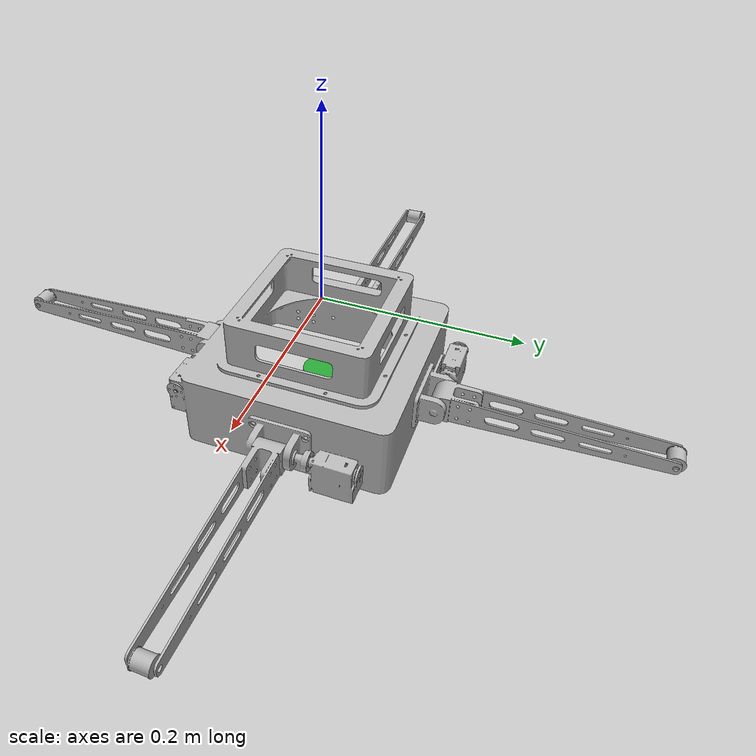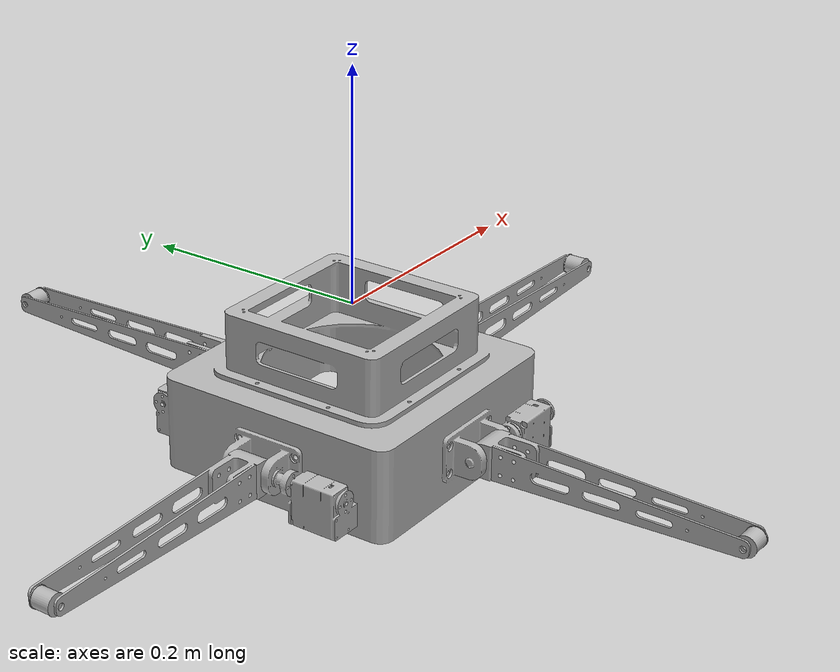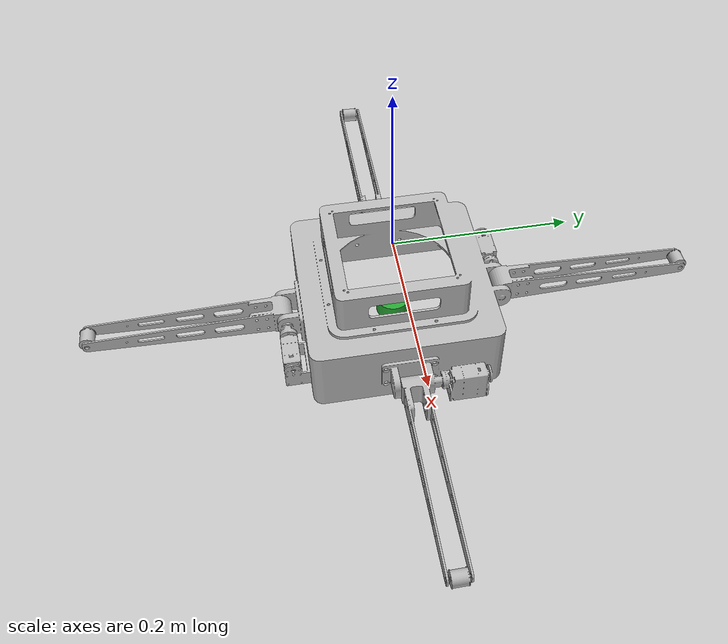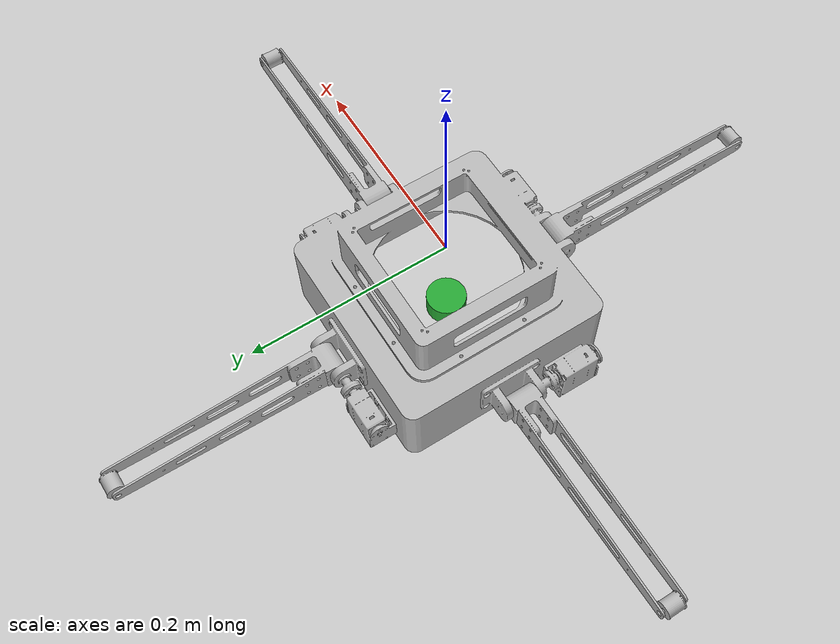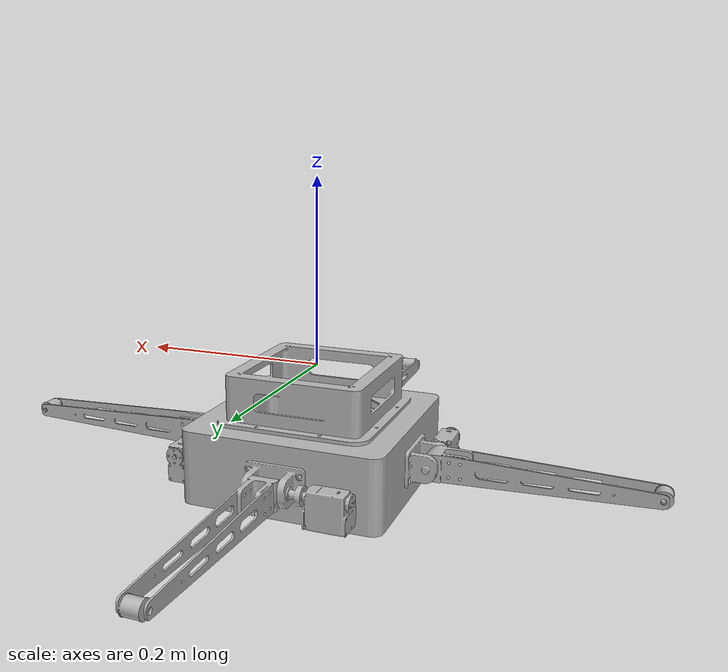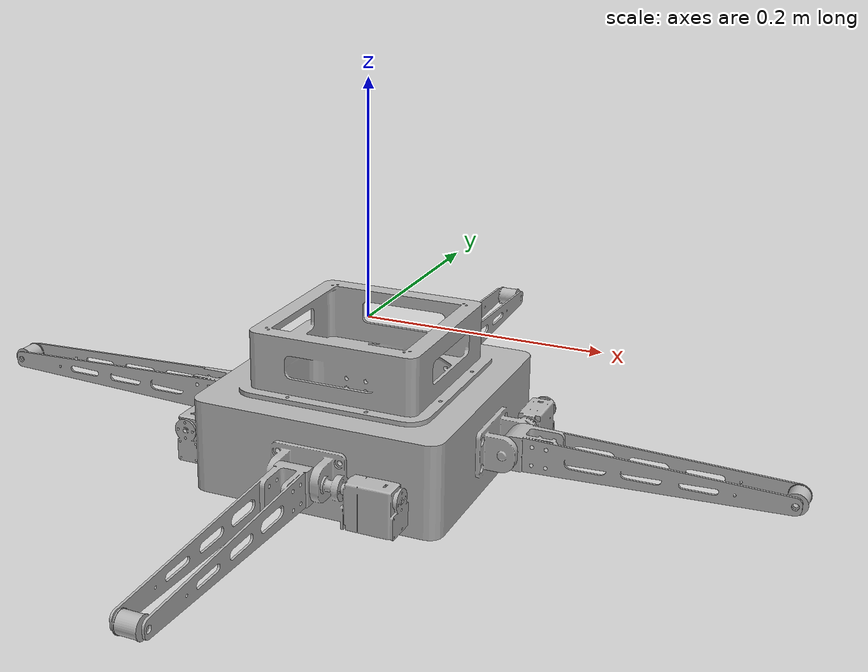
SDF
<sdf version='1.6'>
  <model name='landing_leg'>
    <link name='base_link'>
      <pose frame=''>0 0 0 0 -0 0</pose>
      <inertial>
        <pose frame=''>-0 -0 -0.077877 0 -0 0</pose>
        <mass>0.12479</mass>
        <inertia>
          <ixx>0.0027513</ixx>
          <ixy>9.4479e-16</ixy>
          <ixz>-8.7805e-15</ixz>
          <iyy>0.0027513</iyy>
          <iyz>-1.0013e-14</iyz>
          <izz>0.0049695</izz>
        </inertia>
      </inertial>
      <collision name='base_link_collision'>
        <pose frame=''>0 0 0 0 -0 0</pose>
        <geometry>
          <mesh>
            <scale>1 1 1</scale>
            <uri>model://landing_leg/meshes/base_link.STL</uri>
          </mesh>
        </geometry>
          <surface>
            <friction>
              <ode>
                <mu>8000</mu>
                <mu2>8000</mu2>
              </ode>
            </friction>
          </surface>
      </collision>
      <visual name='base_link_visual'>
        <pose frame=''>0 0 0 0 -0 0</pose>
        <geometry>
          <mesh>
            <scale>1 1 1</scale>
            <uri>model://landing_leg/meshes/base_link.STL</uri>
          </mesh>
        </geometry>
      </visual>
    </link>
    <link name='link1'>
      <pose frame=''>0.0245 -0.129 -0.093 0 -0 0</pose>
      <inertial>
        <pose frame=''>-0.02425 -0.055743 0 0 -0 0</pose>
        <mass>0.037564</mass>
        <inertia>
          <ixx>7.4131e-05</ixx>
          <ixy>4.7361e-19</ixy>
          <ixz>8.8923e-22</ixz>
          <iyy>4.052e-06</iyy>
          <iyz>-8.3037e-12</iyz>
          <izz>7.333e-05</izz>
        </inertia>
      </inertial>
      <collision name='link1_collision'>
        <pose frame=''>0 0 0 0 -0 0</pose>
        <geometry>
          <mesh>
            <scale>1 1 1</scale>
            <uri>model://landing_leg/meshes/link1.STL</uri>
          </mesh>
        </geometry>
      </collision>
      <visual name='link1_visual'>
        <pose frame=''>0 0 0 0 -0 0</pose>
        <geometry>
          <mesh>
            <scale>1 1 1</scale>
            <uri>model://landing_leg/meshes/link1.STL</uri>
          </mesh>
        </geometry>
      </visual>
    </link>
    <joint name='joint1' type='revolute'>
      <child>link1</child>
      <parent>base_link</parent>
      <axis>
        <xyz>1 0 0</xyz>
        <limit>
          <lower>-3</lower>
          <upper>3</upper>
          <effort>10</effort>
          <velocity>10</velocity>
        </limit>
        <dynamics>
          <spring_reference>0</spring_reference>
          <spring_stiffness>0</spring_stiffness>
      	  <damping>0.1</damping>
      	  <friction>0.1</friction>
        </dynamics>
        <use_parent_model_frame>0</use_parent_model_frame>
      </axis>
    </joint>
    <link name='link1_1'>
      <pose frame=''>0.0095 -0.358 -0.093 0 -0 0</pose>
      <inertial>
        <pose frame=''>-0.009062 -0 -0 0 -0 0</pose>
        <mass>0.01515</mass>
        <inertia>
          <ixx>1.5658e-06</ixx>
          <ixy>6.7142e-21</ixy>
          <ixz>3.8689e-22</ixz>
          <iyy>5.9484e-07</iyy>
          <iyz>-3.6442e-08</iyz>
          <izz>1.6371e-06</izz>
        </inertia>
      </inertial>
      <collision name='link1_1_collision'>
        <pose frame=''>0 0 0 0 -0 0</pose>
        <geometry>
          <mesh>
            <scale>1 1 1</scale>
            <uri>model://landing_leg/meshes/link1_1.STL</uri>
          </mesh>
        </geometry>
          <surface>
            <friction>
              <ode>
                <mu>800</mu>
                <mu2>800</mu2>
              </ode>
            </friction>
          </surface>
      </collision>
      <visual name='link1_1_visual'>
        <pose frame=''>0 0 0 0 -0 0</pose>
        <geometry>
          <mesh>
            <scale>1 1 1</scale>
            <uri>model://landing_leg/meshes/link1_1.STL</uri>
          </mesh>
        </geometry>
      </visual>
    </link>
    <joint name='joint1_1' type='revolute'>
      <child>link1_1</child>
      <parent>link1</parent>
      <pose>0 0 0 0 0</pose>
      <axis>
        <xyz>1 0 0</xyz>
        <limit>
          <lower>0</lower>
          <upper>0</upper>
          <effort>0</effort>
          <velocity>0</velocity>
        </limit>
        <dynamics>
          <spring_reference>0</spring_reference>
          <spring_stiffness>0</spring_stiffness>
        </dynamics>
        <use_parent_model_frame>0</use_parent_model_frame>
      </axis>
      <sensor name="force_torque" type="force_torque">
        <pose frame=''>0 0 0 0 0 0</pose>
        <always_on>true</always_on>
        <visualize>false</visualize>
        <update_rate>10</update_rate>
  	    <force_torque>
    	    <frame>parent</frame>
    	    <measure_direction>child_to_parent</measure_direction>
  	    </force_torque>
      </sensor>
    </joint>
    <link name='link2'>
      <pose frame=''>0.129 0.0245 -0.093 0 -0 0</pose>
      <inertial>
        <pose frame=''>0.055743 -0.02425 0 0 -0 0</pose>
        <mass>0.037564</mass>
        <inertia>
          <ixx>4.052e-06</ixx>
          <ixy>-7.1855e-19</ixy>
          <ixz>8.3037e-12</ixz>
          <iyy>7.4131e-05</iyy>
          <iyz>5.239e-22</iyz>
          <izz>7.333e-05</izz>
        </inertia>
      </inertial>
      <collision name='link2_collision'>
        <pose frame=''>0 0 0 0 -0 0</pose>
        <geometry>
          <mesh>
            <scale>1 1 1</scale>
            <uri>model://landing_leg/meshes/link2.STL</uri>
          </mesh>
        </geometry>
      </collision>
      <visual name='link2_visual'>
        <pose frame=''>0 0 0 0 -0 0</pose>
        <geometry>
          <mesh>
            <scale>1 1 1</scale>
            <uri>model://landing_leg/meshes/link2.STL</uri>
          </mesh>
        </geometry>
      </visual>
    </link>
    <joint name='joint2' type='revolute'>
      <child>link2</child>
      <parent>base_link</parent>
      <axis>
        <xyz>0 1 0</xyz>
        <limit>
          <lower>-3</lower>
          <upper>3</upper>
          <effort>10</effort>
          <velocity>10</velocity>
        </limit>
        <dynamics>
          <spring_reference>0</spring_reference>
          <spring_stiffness>0</spring_stiffness>
      	  <damping>0.1</damping>
      	  <friction>0.1</friction>
        </dynamics>
        <use_parent_model_frame>0</use_parent_model_frame>
      </axis>
    </joint>
    <link name='link2_1'>
      <pose frame=''>0.358 0.0095 -0.093 0 -0 0</pose>
      <inertial>
        <pose frame=''>0 -0.009062 -0 0 -0 0</pose>
        <mass>0.0151495</mass>
        <inertia>
          <ixx>5.9484e-07</ixx>
          <ixy>-1.02487e-20</ixy>
          <ixz>3.6442e-08</ixz>
          <iyy>1.5658e-06</iyy>
          <iyz>5.10204e-22</iyz>
          <izz>1.63713e-06</izz>
        </inertia>
      </inertial>
      <collision name='link2_1_collision'>
        <pose frame=''>0 0 0 0 -0 0</pose>
        <geometry>
          <mesh>
            <scale>1 1 1</scale>
            <uri>model://landing_leg/meshes/link2_1.STL</uri>
          </mesh>
        </geometry>
          <surface>
            <friction>
              <ode>
                <mu>800</mu>
                <mu2>800</mu2>
              </ode>
            </friction>
          </surface>
      </collision>
      <visual name='link2_1_visual'>
        <pose frame=''>0 0 0 0 -0 0</pose>
        <geometry>
          <mesh>
            <scale>1 1 1</scale>
            <uri>model://landing_leg/meshes/link2_1.STL</uri>
          </mesh>
        </geometry>
      </visual>
    </link>
    <joint name='joint2_1' type='revolute'>
      <child>link2_1</child>
      <parent>link2</parent>
      <pose>0 0 0 0 0 1.5708</pose>
      <axis>
        <xyz>0 1 0</xyz>
        <limit>
          <lower>0</lower>
          <upper>0</upper>
          <effort>0</effort>
          <velocity>0</velocity>
        </limit>
        <dynamics>
          <spring_reference>0</spring_reference>
          <spring_stiffness>0</spring_stiffness>
        </dynamics>
        <use_parent_model_frame>0</use_parent_model_frame>
      </axis>
      <sensor name="force_torque" type="force_torque">
        <pose frame=''>0 0 0 0 0 0</pose>
        <always_on>true</always_on>
        <visualize>false</visualize>
        <update_rate>10</update_rate>
  	    <force_torque>
          <frame>parent</frame>
          <measure_direction>child_to_parent</measure_direction>
  	    </force_torque>
      </sensor>
    </joint>
    <link name='link3'>
      <pose frame=''>-0.0245 0.129 -0.093 0 -0 0</pose>
      <inertial>
        <pose frame=''>0.02425 0.055743 0 0 -0 0</pose>
        <mass>0.037564</mass>
        <inertia>
          <ixx>7.4131e-05</ixx>
          <ixy>-1.5448e-20</ixy>
          <ixz>-4.348e-22</ixz>
          <iyy>4.052e-06</iyy>
          <iyz>8.3037e-12</iyz>
          <izz>7.333e-05</izz>
        </inertia>
      </inertial>
      <collision name='link3_collision'>
        <pose frame=''>0 0 0 0 -0 0</pose>
        <geometry>
          <mesh>
            <scale>1 1 1</scale>
            <uri>model://landing_leg/meshes/link3.STL</uri>
          </mesh>
        </geometry>
      </collision>
      <visual name='link3_visual'>
        <pose frame=''>0 0 0 0 -0 0</pose>
        <geometry>
          <mesh>
            <scale>1 1 1</scale>
            <uri>model://landing_leg/meshes/link3.STL</uri>
          </mesh>
        </geometry>
      </visual>
    </link>
    <joint name='joint3' type='revolute'>
      <child>link3</child>
      <parent>base_link</parent>
      <axis>
        <xyz>-1 0 0</xyz>
        <limit>
          <lower>-3</lower>
          <upper>3</upper>
          <effort>10</effort>
          <velocity>10</velocity>
        </limit>
        <dynamics>
          <spring_reference>0</spring_reference>
          <spring_stiffness>0</spring_stiffness>
      	  <damping>0.1</damping>
      	  <friction>0.1</friction>
        </dynamics>
        <use_parent_model_frame>0</use_parent_model_frame>
      </axis>
    </joint>
    <link name='link3_1'>
      <pose frame=''>-0.0095 0.358 -0.093 0 -0 0</pose>
      <inertial>
        <pose frame=''>0.009062 0 -0 0 -0 0</pose>
        <mass>0.01515</mass>
        <inertia>
          <ixx>1.5658e-06</ixx>
          <ixy>-2.4e-22</ixy>
          <ixz>-1.1005e-22</ixz>
          <iyy>5.9484e-07</iyy>
          <iyz>3.6442e-08</iyz>
          <izz>1.6371e-06</izz>
        </inertia>
      </inertial>
      <collision name='link3_1_collision'>
        <pose frame=''>0 0 0 0 -0 0</pose>
        <geometry>
          <mesh>
            <scale>1 1 1</scale>
            <uri>model://landing_leg/meshes/link3_1.STL</uri>
          </mesh>
        </geometry>
          <surface>
            <friction>
              <ode>
                <mu>800</mu>
                <mu2>800</mu2>
              </ode>
            </friction>
          </surface>
      </collision>
      <visual name='link3_1_visual'>
        <pose frame=''>0 0 0 0 -0 0</pose>
        <geometry>
          <mesh>
            <scale>1 1 1</scale>
            <uri>model://landing_leg/meshes/link3_1.STL</uri>
          </mesh>
        </geometry>
      </visual>
    </link>
    <joint name='joint3_1' type='revolute'>
      <child>link3_1</child>
      <parent>link3</parent>
      <pose>0 0 0 0 0 -3.1416</pose>
      <axis>
        <xyz>-1 0 0</xyz>
        <limit>
          <lower>0</lower>
          <upper>0</upper>
          <effort>0</effort>
          <velocity>0</velocity>
        </limit>
        <dynamics>
          <spring_reference>0</spring_reference>
          <spring_stiffness>0</spring_stiffness>
        </dynamics>
        <use_parent_model_frame>0</use_parent_model_frame>
      </axis>
      <sensor name="force_torque" type="force_torque">
        <pose frame=''>0 0 0 0 0 0</pose>
        <always_on>true</always_on>
        <visualize>false</visualize>
        <update_rate>10</update_rate>
  	    <force_torque>
          <frame>parent</frame>
          <measure_direction>child_to_parent</measure_direction>
  	    </force_torque>
      </sensor>
    </joint>
    <link name='link4'>
      <pose frame=''>-0.129 -0.0245 -0.093 0 -0 0</pose>
      <inertial>
        <pose frame=''>-0.055743 0.02425 0 0 -0 0</pose>
        <mass>0.037564</mass>
        <inertia>
          <ixx>4.052e-06</ixx>
          <ixy>-2.2876e-19</ixy>
          <ixz>-8.3037e-12</ixz>
          <iyy>7.4131e-05</iyy>
          <iyz>-3.5428e-22</iyz>
          <izz>7.333e-05</izz>
        </inertia>
      </inertial>
      <collision name='link4_collision'>
        <pose frame=''>0 0 0 0 -0 0</pose>
        <geometry>
          <mesh>
            <scale>1 1 1</scale>
            <uri>model://landing_leg/meshes/link4.STL</uri>
          </mesh>
        </geometry>
      </collision>
      <visual name='link4_visual'>
        <pose frame=''>0 0 0 0 -0 0</pose>
        <geometry>
          <mesh>
            <scale>1 1 1</scale>
            <uri>model://landing_leg/meshes/link4.STL</uri>
          </mesh>
        </geometry>
      </visual>
    </link>
    <joint name='joint4' type='revolute'>
      <child>link4</child>
      <parent>base_link</parent>
      <axis>
        <xyz>0 -1 0</xyz>
        <limit>
          <lower>-3</lower>
          <upper>3</upper>
          <effort>10</effort>
          <velocity>10</velocity>
        </limit>
        <dynamics>
          <spring_reference>0</spring_reference>
          <spring_stiffness>0</spring_stiffness>
      	  <damping>0.1</damping>
      	  <friction>0.1</friction>
        </dynamics>
        <use_parent_model_frame>0</use_parent_model_frame>
      </axis>
    </joint>
    <link name='link4_1'>
      <pose frame=''>-0.358 -0.0085 -0.093 0 -0 0</pose>
      <inertial>
        <pose frame=''>-0 0.008062 -0 0 -0 0</pose>
        <mass>0.01515</mass>
        <inertia>
          <ixx>5.9484e-07</ixx>
          <ixy>-3.2887e-21</ixy>
          <ixz>-3.6442e-08</ixz>
          <iyy>1.5658e-06</iyy>
          <iyz>-2.4771e-22</iyz>
          <izz>1.6371e-06</izz>
        </inertia>
      </inertial>
      <collision name='link4_1_collision'>
        <pose frame=''>0 0 0 0 -0 0</pose>
        <geometry>
          <mesh>
            <scale>1 1 1</scale>
            <uri>model://landing_leg/meshes/link4_1.STL</uri>
          </mesh>
        </geometry>
          <surface>
            <friction>
              <ode>
                <mu>800</mu>
                <mu2>800</mu2>
              </ode>
            </friction>
          </surface>
      </collision>
      <visual name='link4_1_visual'>
        <pose frame=''>0 0 0 0 -0 0</pose>
        <geometry>
          <mesh>
            <scale>1 1 1</scale>
            <uri>model://landing_leg/meshes/link4_1.STL</uri>
          </mesh>
        </geometry>
      </visual>
    </link>
    <joint name='joint4_1' type='revolute'>
      <child>link4_1</child>
      <parent>link4</parent>
      <pose>0 0 0 0 0 -1.5708</pose>
      <axis>
        <xyz>0 -1 0</xyz>
        <limit>
          <lower>0</lower>
          <upper>0</upper>
          <effort>0</effort>
          <velocity>0</velocity>
        </limit>
        <dynamics>
          <spring_reference>0</spring_reference>
          <spring_stiffness>0</spring_stiffness>
        </dynamics>
        <use_parent_model_frame>0</use_parent_model_frame>
      </axis>
      <sensor name="force_torque" type="force_torque">
        <pose frame=''>0 0 0 0 0 0</pose>
        <always_on>true</always_on>
        <visualize>false</visualize>
        <update_rate>10</update_rate>
  	    <force_torque>
          <frame>parent</frame>
          <measure_direction>child_to_parent</measure_direction>
  	    </force_torque>
      </sensor>
    </joint>

	<!-- ######## velodyne ######### -->
		<!-- Give the base link a unique name -->
		<link name="velodyne">
		<!-- Vertically offset the velodyne cylinder by the length of the bottom
			cylinder and half the length of this cylinder. -->
		<pose>0 0 -0.1 0 0 0</pose>
		<inertial>
			<mass>0.01</mass>
			<inertia>
			<ixx>0.00001</ixx>
			<iyy>0.00001</iyy>
			<izz>0.00001</izz>
			<ixy>0</ixy>
			<ixz>0</ixz>
			<iyz>0</iyz>
			</inertia>
		</inertial>
		<collision name="velodyne_collision">
			<geometry>
			<cylinder>
				<!-- Radius and length provided by Velodyne -->
				<radius>0.02</radius>
				<length>0.02</length>
			</cylinder>
			</geometry>
		</collision>
		<!-- The visual is mostly a copy of the collision -->
		<visual name="velodyne_visual">
			<geometry>
			<cylinder>
				<radius>0.02</radius>
				<length>0.02</length>
			</cylinder>
			</geometry>
        <material>
          <script>
            <name>Gazebo/Green</name>
            <uri>file://media/materials/scripts/gazebo.material</uri>
          </script>
        </material>
		</visual>
		<!-- Add a ray sensor, and give it a name -->
		<sensor type="ray" name="sensor">
      <always_on>true</always_on>
			<pose>0 0 0 0 1.5708 0</pose>
			<!-- Enable visualization to see the rays in the GUI -->
			<visualize>true</visualize>
			<!-- Set the update rate of the sensor -->
			<update_rate>20</update_rate>
			<ray>
				<!-- The scan element contains the horizontal and vertical beams.
					We are leaving out the vertical beams for this tutorial. -->
				<scan>
				<!-- The horizontal beams -->
				<horizontal>
					<!-- The velodyne has 32 beams(samples) -->
					<samples>1</samples>
					<!-- Resolution is multiplied by samples to determine number of
						simulated beams vs interpolated beams. See:
						http://sdformat.org/spec?ver=1.6&elem=sensor#horizontal_resolution
						-->
					<resolution>1</resolution>
					<!-- Minimum angle in radians -->
					<min_angle>0.0001</min_angle>
					<!-- Maximum angle in radians -->
					<max_angle>-0.0001</max_angle>
				</horizontal>
				</scan>
				<!-- Range defines characteristics of an individual beam -->
				<range>
				<!-- Minimum distance of the beam -->
				<min>0.05</min>
				<!-- Maximum distance of the beam -->
				<max>10</max>
				<!-- Linear resolution of the beam -->
				<resolution>0.02</resolution>
				</range>
			</ray>
		</sensor>
	  </link>
		<joint type="revolute" name="velodyne_revolute">
			<parent>base_link</parent>
			<child>velodyne</child>
      <pose>0 0 -0 0 0 0</pose>
      <axis>
        <xyz>0 -1 0</xyz>
        <limit>
          <lower>0</lower>
          <upper>0</upper>
          <effort>0</effort>
          <velocity>0</velocity>
        </limit>
        <dynamics>
          <spring_reference>0</spring_reference>
          <spring_stiffness>0</spring_stiffness>
        </dynamics>
        <use_parent_model_frame>0</use_parent_model_frame>
      </axis>
		</joint>
  </model>
</sdf>
